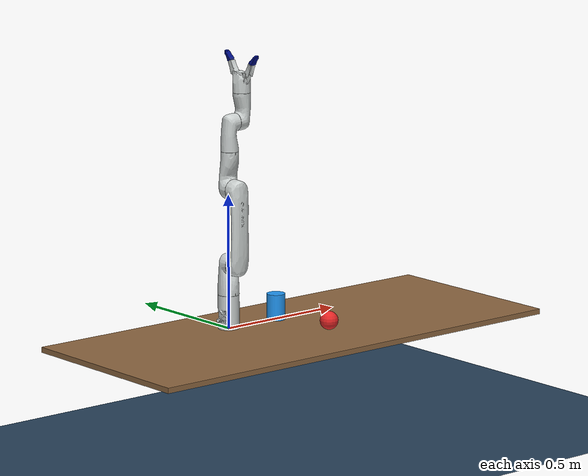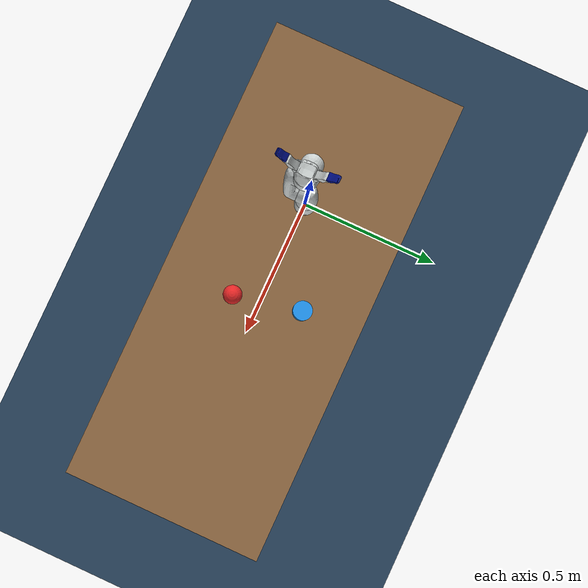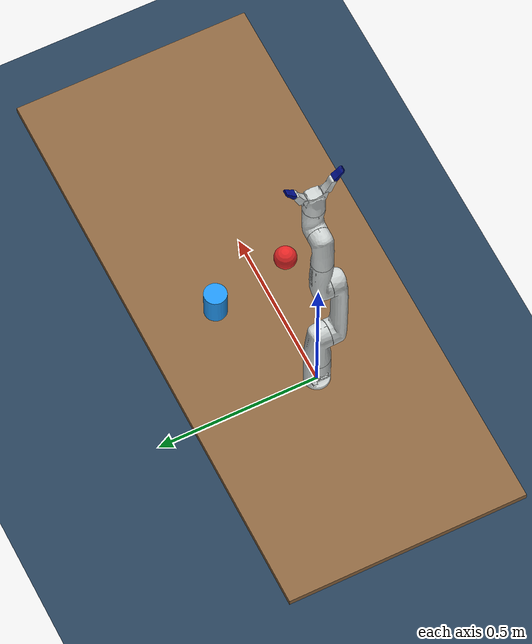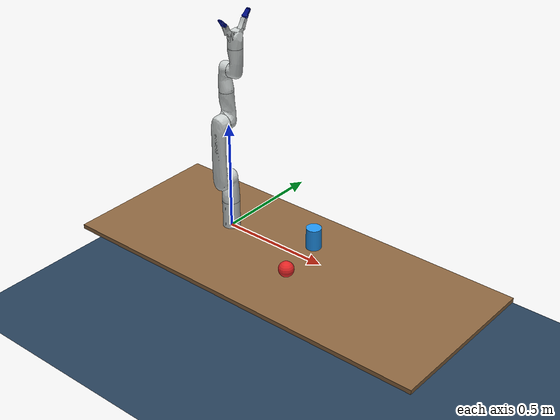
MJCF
<mujoco model="gen3_lite scene">
  <include file="gen3_lite.xml"/>

  <compiler angle="radian"/>

  <asset>
    <texture type="skybox" builtin="gradient" rgb1="0.3 0.5 0.7" rgb2="0 0 0" width="512" height="512"/>
    <texture name="grid" type="2d" builtin="checker" rgb1="0.1 0.2 0.3" rgb2="0.2 0.3 0.4"
              width="512" height="512"/>
    <material name="grid" texture="grid" texrepeat="4 4" reflectance="0.1"/>
    <material name="table_mat" rgba="0.55 0.4 0.25 1"/>
    <material name="cup_mat" rgba="0.13 0.59 0.95 1"/>
    <material name="ball_mat" rgba="0.9 0.15 0.15 1"/>
  </asset>

  <worldbody>
    <light pos="0 0 2.5" dir="0 0 -1" diffuse="0.7 0.7 0.7" specular="0.2 0.2 0.2"/>
    <light pos="1 -1 2" dir="-0.3 0.3 -1" diffuse="0.4 0.4 0.4"/>

    <!-- Positioned well below the table (surface at z=-0.05) so the table reads as a
         distinct raised surface instead of being hidden inside/behind the floor plane. -->
    <geom name="floor" type="plane" pos="0 0 -0.5" size="3 3 0.05" material="grid"/>

    <!-- Table: center z = TABLE_SURFACE_Z - thickness/2, matching add_table() in
         kinova_pick_planner.py exactly (surface at z=-0.05, thickness=0.02). -->
    <body name="table" pos="0.325 0 -0.06">
      <geom name="table_top" type="box" size="0.9 0.375 0.01" material="table_mat"/>
    </body>

    <!-- Placeholder objects resting on the table surface (z=-0.05) -->
    <body name="cup" pos="0.35 0.15 0.0">
      <freejoint/>
      <geom name="cup_geom" type="cylinder" size="0.035 0.05" material="cup_mat" mass="0.05"/>
    </body>
    <body name="ball" pos="0.40 -0.10 -0.015">
      <freejoint/>
      <geom name="ball_geom" type="sphere" size="0.035" material="ball_mat" mass="0.03"/>
    </body>

    <!-- Overview camera, auto-oriented at the table (no manual angle math needed) -->
    <camera name="overview" pos="1.6 -1.6 1.3" mode="targetbody" target="table"/>
  </worldbody>
</mujoco>

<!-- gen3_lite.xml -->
<mujoco model="gen3_lite">
  <compiler angle="radian"/>

  <asset>
    <mesh name="base_link" content_type="model/stl" file="/kortex_ws/install/kortex_description/share/kortex_description/arms/gen3_lite/6dof/meshes/base_link.STL"/>
    <mesh name="shoulder_link" content_type="model/stl" file="/kortex_ws/install/kortex_description/share/kortex_description/arms/gen3_lite/6dof/meshes/shoulder_link.STL"/>
    <mesh name="arm_link" content_type="model/stl" file="/kortex_ws/install/kortex_description/share/kortex_description/arms/gen3_lite/6dof/meshes/arm_link.STL"/>
    <mesh name="forearm_link" content_type="model/stl" file="/kortex_ws/install/kortex_description/share/kortex_description/arms/gen3_lite/6dof/meshes/forearm_link.STL"/>
    <mesh name="lower_wrist_link" content_type="model/stl" file="/kortex_ws/install/kortex_description/share/kortex_description/arms/gen3_lite/6dof/meshes/lower_wrist_link.STL"/>
    <mesh name="upper_wrist_link" content_type="model/stl" file="/kortex_ws/install/kortex_description/share/kortex_description/arms/gen3_lite/6dof/meshes/upper_wrist_link.STL"/>
    <mesh name="gripper_base_link" content_type="model/stl" file="/kortex_ws/install/kortex_description/share/kortex_description/grippers/gen3_lite_2f/meshes/gripper_base_link.STL"/>
    <mesh name="right_finger_prox_link" content_type="model/stl" file="/kortex_ws/install/kortex_description/share/kortex_description/grippers/gen3_lite_2f/meshes/right_finger_prox_link.STL"/>
    <mesh name="right_finger_dist_link" content_type="model/stl" file="/kortex_ws/install/kortex_description/share/kortex_description/grippers/gen3_lite_2f/meshes/right_finger_dist_link.STL"/>
    <mesh name="left_finger_prox_link" content_type="model/stl" file="/kortex_ws/install/kortex_description/share/kortex_description/grippers/gen3_lite_2f/meshes/left_finger_prox_link.STL"/>
    <mesh name="left_finger_dist_link" content_type="model/stl" file="/kortex_ws/install/kortex_description/share/kortex_description/grippers/gen3_lite_2f/meshes/left_finger_dist_link.STL"/>
  </asset>

  <worldbody>
    <body name="gen3_lite_base" pos="0 0 0" quat="1 0 0 0">
    <geom type="mesh" rgba="0.803 0.824 0.82 1" mesh="base_link"/>
    <body name="shoulder_link" pos="0 0 0.12825">
      <inertial pos="2.477e-05 0.0221353 0.0993769" quat="0.972429 0.233194 -0.000430944 0.00108761" mass="0.959744" diaginertia="0.00165947 0.00158128 0.000717195"/>
      <joint name="joint_1" pos="0 0 0" axis="0 0 1" range="-2.68 2.68" actuatorfrcrange="-10 10" damping="2.0"/>
      <geom type="mesh" rgba="0.803 0.824 0.82 1" mesh="shoulder_link"/>
      <body name="arm_link" pos="0 -0.03 0.115" quat="0.707105 0.707108 0 0">
        <inertial pos="0.029983 0.211548 0.0453031" quat="0.534676 0.467794 -0.46336 0.529706" mass="1.17756" diaginertia="0.0115237 0.0114928 0.000839712"/>
        <joint name="joint_2" pos="0 0 0" axis="0 0 1" range="-2.61 2.61" actuatorfrcrange="-14 14" damping="2.0"/>
        <geom type="mesh" rgba="0.803 0.824 0.82 1" mesh="arm_link"/>
        <body name="forearm_link" pos="0 0.28 0" quat="-3.67321e-06 -1 0 0">
          <inertial pos="0.0301559 0.0950221 0.0073555" quat="0.523543 0.49139 -0.473675 0.50997" mass="0.597677" diaginertia="0.00169754 0.00163253 0.000291376"/>
          <joint name="joint_3" pos="0 0 0" axis="0 0 1" range="-2.61 2.61" actuatorfrcrange="-10 10" damping="2.0"/>
          <geom type="mesh" rgba="0.803 0.824 0.82 1" mesh="forearm_link"/>
          <body name="lower_wrist_link" pos="0 -0.14 0.02" quat="0.707105 0.707108 0 0">
            <inertial pos="0.00575149 0.0100044 0.0871921" quat="0.700403 -0.13124 -0.134345 0.688595" mass="0.526934" diaginertia="0.000785199 0.000756398 0.000275722"/>
            <joint name="joint_4" pos="0 0 0" axis="0 0 1" range="-2.6 2.6" actuatorfrcrange="-7 7" damping="0.5"/>
            <geom type="mesh" rgba="0.803 0.824 0.82 1" mesh="lower_wrist_link"/>
            <body name="upper_wrist_link" pos="0.0285 0 0.105" quat="0.707105 0 0.707108 0">
              <inertial pos="0.0805652 0.00980409 0.018728" quat="0.00431726 0.708285 -4.18922e-06 0.705913" mass="0.580973" diaginertia="0.00108466 0.00106374 0.000212638"/>
              <joint name="joint_5" pos="0 0 0" axis="0 0 1" range="-2.53 2.53" actuatorfrcrange="-7 7" damping="0.5"/>
              <geom type="mesh" rgba="0.803 0.824 0.82 1" mesh="upper_wrist_link"/>
              <body name="end_effector_link" pos="-0.105 0 0.0285" quat="0.707105 0 -0.707108 0">
                <joint name="joint_6" pos="0 0 0" axis="0 0 1" range="-2.6 2.6" actuatorfrcrange="-7 7" damping="0.5"/>
                <geom type="mesh" rgba="0.803 0.824 0.82 1" mesh="gripper_base_link"/>
                <body name="right_finger_prox_link" pos="0 -0.030501 0.070003" quat="0.627167 0.326463 0.6273 0.326463">
                  <inertial pos="0.020257 0.0063483 6.991e-05" quat="0.598941 0.598941 0.375858 0.375858" mass="0.018385" diaginertia="5.25068e-06 4.77e-06 1.59932e-06"/>
                  <joint name="right_finger_bottom_joint" pos="0 0 0" axis="0 0 -1" range="0 0.85" actuatorfrcrange="-50 50" damping="0.2"/>
                  <geom type="mesh" rgba="0.803 0.824 0.82 1" mesh="right_finger_prox_link"/>
                  <body name="right_finger_dist_link" pos="-0.045636 0.020423 0">
                    <inertial pos="0.018488 0.0011091 0" quat="0.557345 0.557345 0.435162 0.435162" mass="0.010748" diaginertia="1.91e-06 1.61e-06 5.5e-07"/>
                    <joint name="right_finger_tip_joint" pos="0 0 0" axis="0 0 1" range="-0.5 0.21" actuatorfrcrange="-1000 1000"/>
                    <geom type="mesh" rgba="0 0.055 0.525 1" mesh="right_finger_dist_link"/>
                  </body>
                </body>
                <body name="left_finger_prox_link" pos="0 0.0305 0.070003" quat="0.627167 -0.326463 0.6273 -0.326463">
                  <inertial pos="0.020257 0.0063483 6.99e-05" quat="0.598941 0.598941 0.375858 0.375858" mass="0.018385" diaginertia="5.25068e-06 4.77e-06 1.59932e-06"/>
                  <joint name="left_finger_bottom_joint" pos="0 0 0" axis="0 0 1" range="0 0.85" actuatorfrcrange="-1000 1000"/>
                  <geom type="mesh" rgba="0.803 0.824 0.82 1" mesh="left_finger_prox_link"/>
                  <body name="left_finger_dist_link" pos="-0.045636 -0.020423 6.9901e-05">
                    <inertial pos="-0.018488 0.0011091 0" quat="0.557345 0.557345 0.435162 0.435162" mass="0.010748" diaginertia="1.91e-06 1.61e-06 5.5e-07"/>
                    <joint name="left_finger_tip_joint" pos="0 0 0" axis="0 0 -1" range="-0.5 0.21" actuatorfrcrange="-1000 1000"/>
                    <geom type="mesh" rgba="0 0.055 0.525 1" mesh="left_finger_dist_link"/>
                  </body>
                </body>
              </body>
            </body>
          </body>
        </body>
      </body>
    </body>
    </body>
  </worldbody>
</mujoco>
